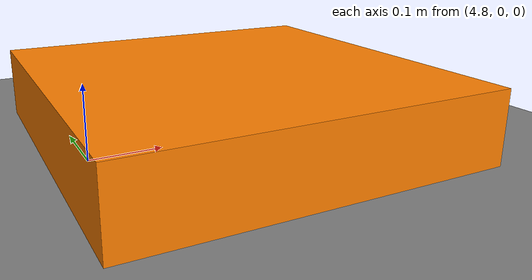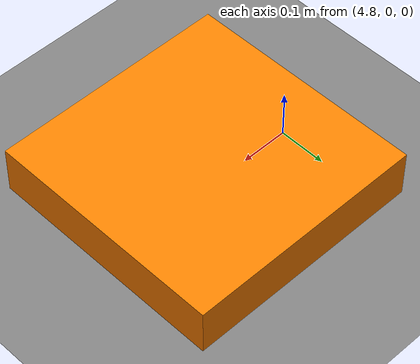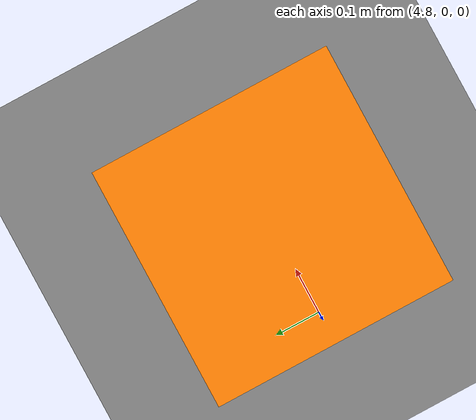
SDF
<?xml version="1.0" ?>
<sdf version="1.8">
  <world name="speed_bump_world">

    <physics name="default" type="ode">
      <max_step_size>0.002</max_step_size>
      <real_time_factor>1.0</real_time_factor>
    </physics>

    <plugin filename="gz-sim-physics-system"
            name="gz::sim::systems::Physics"/>
    <plugin filename="gz-sim-user-commands-system"
            name="gz::sim::systems::UserCommands"/>
    <plugin filename="gz-sim-scene-broadcaster-system"
            name="gz::sim::systems::SceneBroadcaster"/>

    <!-- Directional sun light -->
    <light name="sun" type="directional">
      <cast_shadows>true</cast_shadows>
      <pose>0 0 10 0 0 0</pose>
      <diffuse>0.8 0.8 0.8 1</diffuse>
      <specular>0.2 0.2 0.2 1</specular>
      <direction>-0.5 0.1 -0.9</direction>
    </light>

    <!-- Flat grey tarmac ground plane 20m x 5m -->
    <model name="ground_plane">
      <static>true</static>
      <link name="link">
        <collision name="collision">
          <geometry>
            <plane>
              <normal>0 0 1</normal>
              <size>20 5</size>
            </plane>
          </geometry>
          <surface>
            <friction>
              <ode><mu>0.8</mu><mu2>0.8</mu2></ode>
            </friction>
          </surface>
        </collision>
        <visual name="visual">
          <geometry>
            <plane>
              <normal>0 0 1</normal>
              <size>20 5</size>
            </plane>
          </geometry>
          <material>
            <ambient>0.4 0.4 0.4 1</ambient>
            <diffuse>0.5 0.5 0.5 1</diffuse>
          </material>
        </visual>
      </link>
    </model>

    <!-- Speed bump: box 0.5m x 0.5m x 0.1m, orange, at x=5.0, z=0.05 -->
    <model name="speed_bump">
      <static>true</static>
      <pose>5.0 0.0 0.05 0 0 0</pose>
      <link name="link">
        <collision name="collision">
          <geometry>
            <box><size>0.5 0.5 0.1</size></box>
          </geometry>
        </collision>
        <visual name="visual">
          <geometry>
            <box><size>0.5 0.5 0.1</size></box>
          </geometry>
          <material>
            <ambient>1.0 0.5 0.0 1</ambient>
            <diffuse>1.0 0.5 0.0 1</diffuse>
            <specular>0.1 0.1 0.1 1</specular>
          </material>
        </visual>
      </link>
    </model>

  </world>
</sdf>
